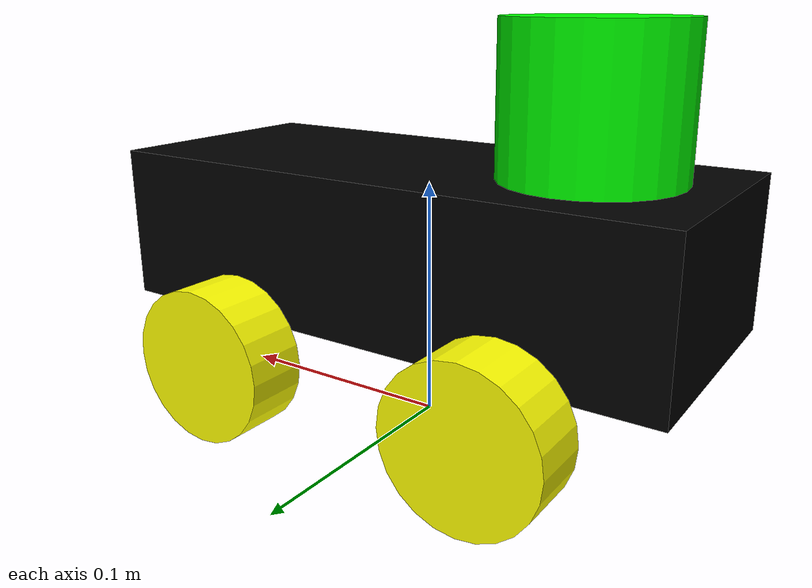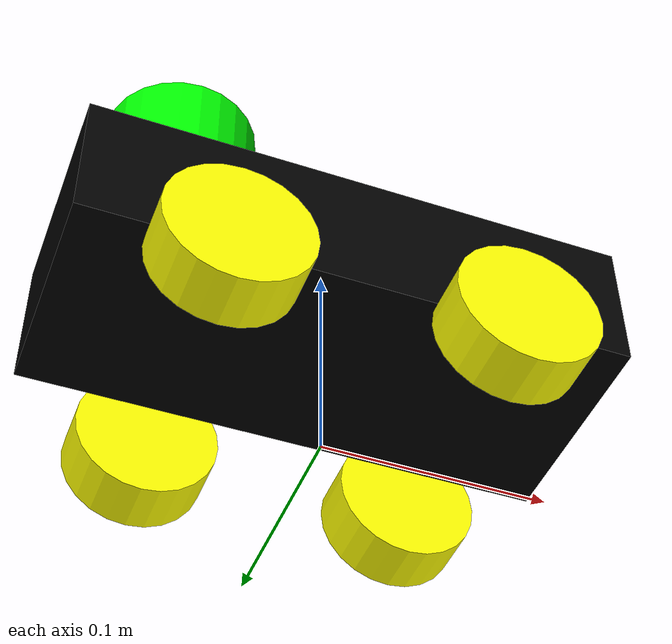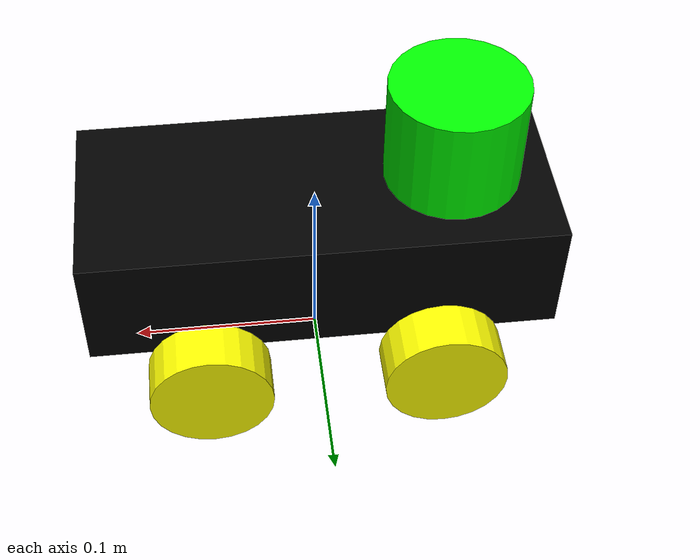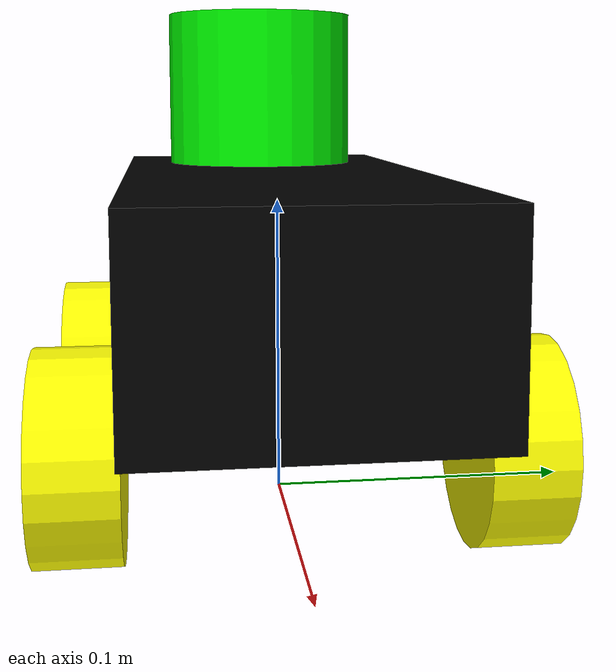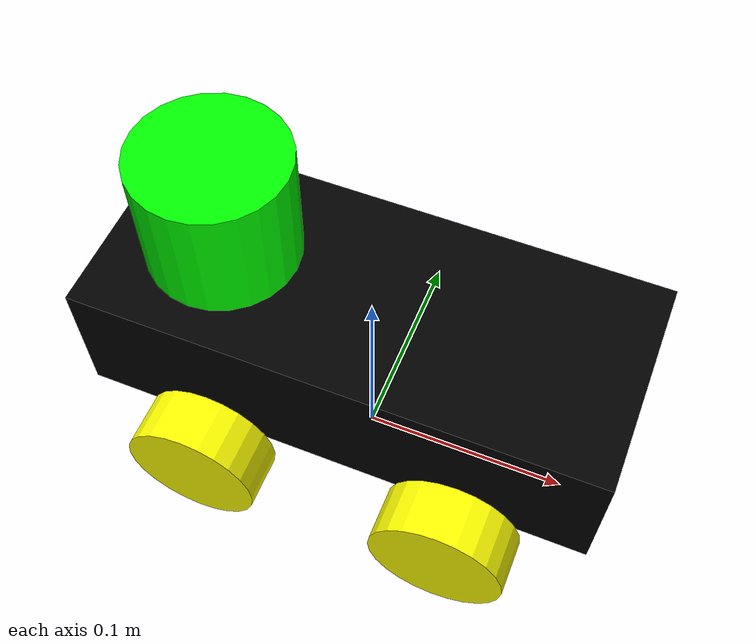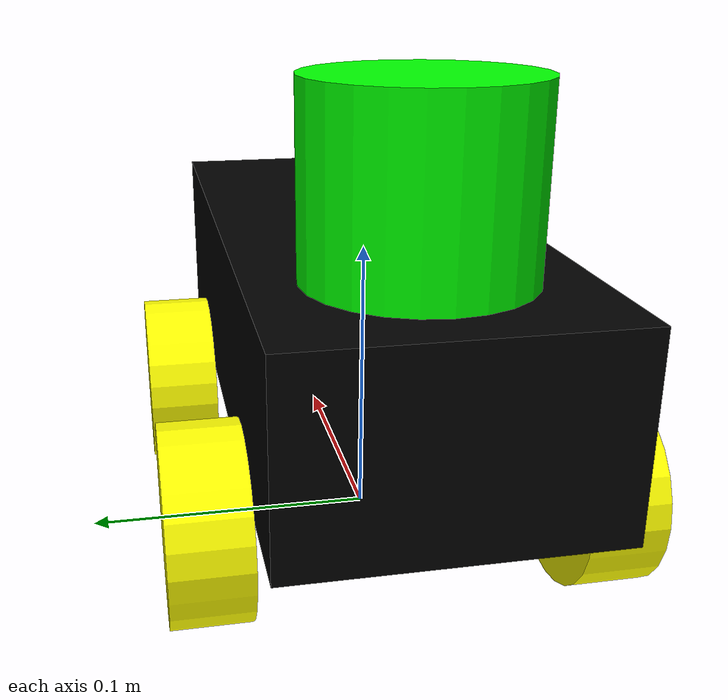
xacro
<?xml version="1.0"?>
<robot name="sdp_bot" xmlns:xacro="http://www.ros.org.wiki/xacro">

	<xacro:include filename="inertial_macros.xacro"/>

	<material name="black">
		<color rgba="0 0 0 1" />
	</material>

	<material name="yellow">
		<color rgba="1 1 0 1" />
	</material>

	<material name="green">
		<color rgba="0 1 0 1" />
	</material>

	<link name="base_footprint" />

	<link name="base_link">
		<visual>
			<geometry>
				<box size="0.2413 0.1016 0.0635" />
			</geometry>
			<origin xyz="0 0 0 " rpy="0 0 0" />
			<material name="black" />
		</visual>
		<collision>
			<geometry>
				<box size="0.2413 0.1016 0.0635" />
			</geometry>
			<origin xyz="0 0 0 " rpy="0 0 0" />
		</collision>
		<xacro:inertial_box mass = "0.5" x="0.2413" y="0.1016" z="0.0635">
			<origin xyz="0 0 0" rpy="0 0 0" />
		</xacro:inertial_box>
	</link>

	<link name="lidar_link">
		<visual>
			<geometry>
				<cylinder radius="0.03502" length="0.05715" />
			</geometry>
			<origin xyz="0 0 0" rpy="0 0 0" />
			<material name="green" />
		</visual>
		<collision>
			<geometry>
				<box size="0.07004 0.07004 0.05715" />
			</geometry>
			<origin xyz="0 0 0" rpy="0 0 0" />
		</collision>
		<xacro:inertial_cylinder mass = "0.1" radius="0.03502" length="0.05715">
			<origin xyz="0 0 0" rpy="0 0 0" />
		</xacro:inertial_cylinder>
	</link>

	<link name="back_left_wheel">
		<visual>
			<geometry>
				<cylinder radius="0.03175" length="0.0254"/>
			</geometry>
			<origin xyz="0 0 0" rpy="1.57 0 0" />
			<material name="yellow" />
		</visual>
		<collision>
			<geometry>
				<cylinder radius="0.03175" length="0.0254"/>
			</geometry>
			<origin xyz="0 0 0" rpy="1.57 0 0" />
		</collision>
		<xacro:inertial_cylinder mass = "0.1" radius="0.03175" length="0.0254">
			<origin xyz="0 0 0" rpy="1.57 0 0" />
		</xacro:inertial_cylinder>
	</link>

	<link name="back_right_wheel">
		<visual>
			<geometry>
				<cylinder radius="0.03175" length="0.0254"/>
			</geometry>
			<origin xyz="0 0 0" rpy="1.57 0 0" />
			<material name="yellow" />
		</visual>
		<collision>
			<geometry>
				<cylinder radius="0.03175" length="0.0254"/>
			</geometry>
			<origin xyz="0 0 0" rpy="1.57 0 0" />
		</collision>
		<xacro:inertial_cylinder mass = "0.1" radius="0.03175" length="0.0254">
			<origin xyz="0 0 0" rpy="1.57 0 0" />
		</xacro:inertial_cylinder>
	</link>

	<link name="front_left_wheel">
		<visual>
			<geometry>
				<cylinder radius="0.03175" length="0.0254"/>
			</geometry>
			<origin xyz="0 0 0" rpy="1.57 0 0" />
			<material name="yellow" />
		</visual>
		<collision>
			<geometry>
				<cylinder radius="0.03175" length="0.0254"/>
			</geometry>
			<origin xyz="0 0 0" rpy="1.57 0 0" />
		</collision>
		<xacro:inertial_cylinder mass = "0.1" radius="0.03175" length="0.0254">
			<origin xyz="0 0 0" rpy="1.57 0 0" />
		</xacro:inertial_cylinder>
	</link>

	<link name="front_right_wheel">
		<visual>
			<geometry>
				<cylinder radius="0.03175" length="0.0254"/>
			</geometry>
			<origin xyz="0 0 0" rpy="1.57 0 0" />
			<material name="yellow" />
		</visual>
		<collision>
			<geometry>
				<cylinder radius="0.03175" length="0.0254"/>
			</geometry>
			<origin xyz="0 0 0" rpy="1.57 0 0" />
		</collision>
		<xacro:inertial_cylinder mass = "0.1" radius="0.03175" length="0.0254">
			<origin xyz="0 0 0" rpy="1.57 0 0" />
		</xacro:inertial_cylinder>
	</link>

	<joint name="base_joint" type="fixed">
		<parent link="base_footprint" />
		<child link="base_link" />
		<origin xyz="0 0 0.07747" rpy="0 0 0" />
	</joint>

	<joint name="base_lidar_joint" type="fixed">
		<parent link="base_link" />
		<child link="lidar_link" />
		<origin xyz="-0.07 0 0.060335" rpy="0 0 0" />
	</joint>

	<joint name="base_back_left_wheel_joint" type="continuous">
		<parent link="base_link" />
		<child link="back_left_wheel" />
		<origin xyz="-0.060335 0.0635 -0.04572" rpy="0 0 0" />
		<axis xyz="0 1 0" />
	</joint>

	<joint name="base_back_right_wheel_joint" type="continuous">
		<parent link="base_link" />
		<child link="back_right_wheel" />
		<origin xyz="-0.060335 -0.0635 -0.04572" rpy="0 0 0" />
		<axis xyz="0 1 0" />
	</joint>

	<joint name="base_front_left_wheel_joint" type="continuous">
		<parent link="base_link" />
		<child link="front_left_wheel" />
		<origin xyz="0.060335 0.0635 -0.04572" rpy="0 0 0" />
		<axis xyz="0 1 0" />
	</joint>

	<joint name="base_front_right_wheel_joint" type="continuous">
		<parent link="base_link" />
		<child link="front_right_wheel" />
		<origin xyz="0.060335 -0.0635 -0.04572" rpy="0 0 0" />
		<axis xyz="0 1 0" />
	</joint>
</robot>
